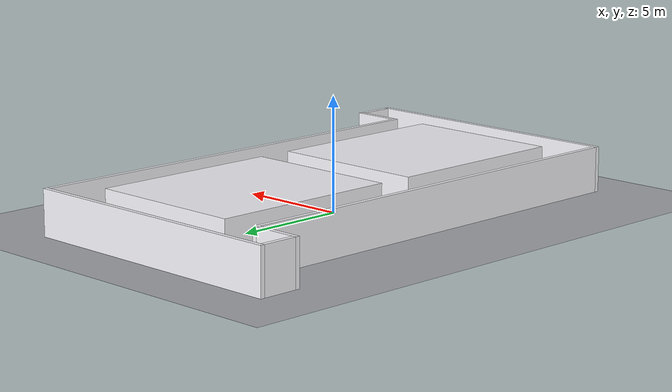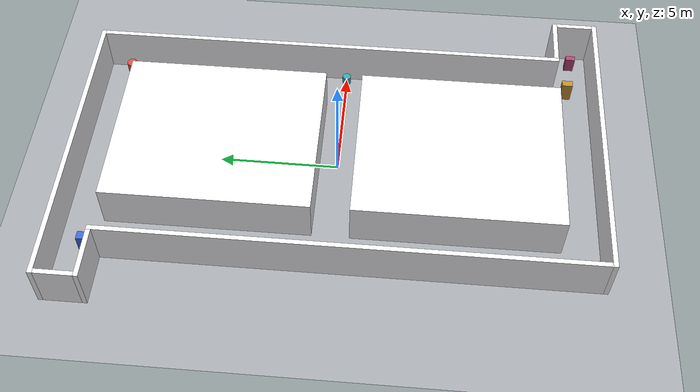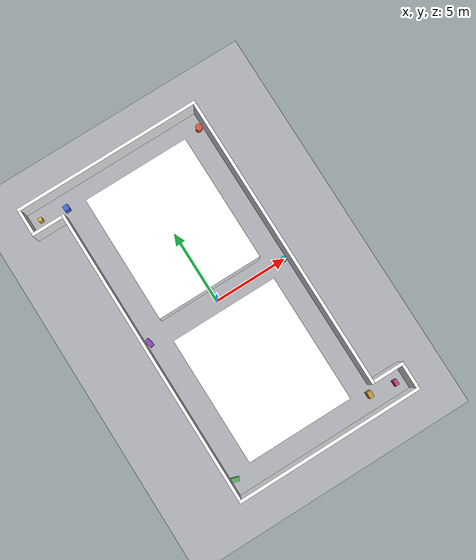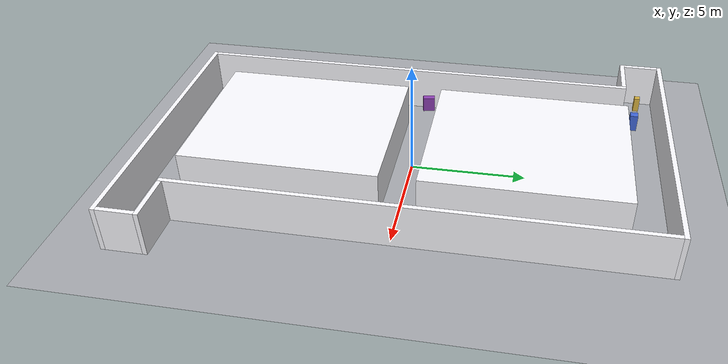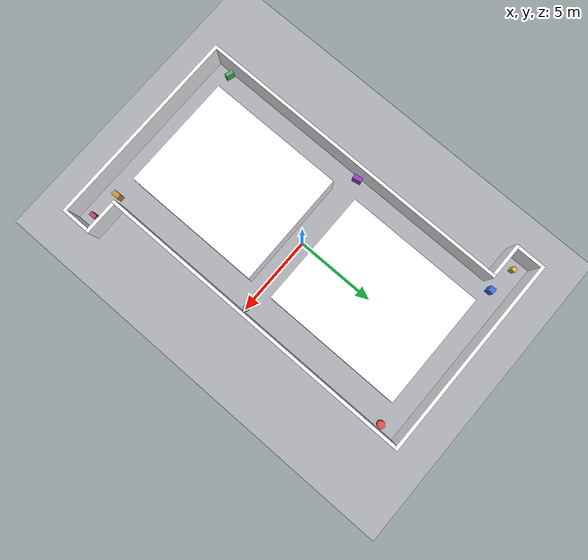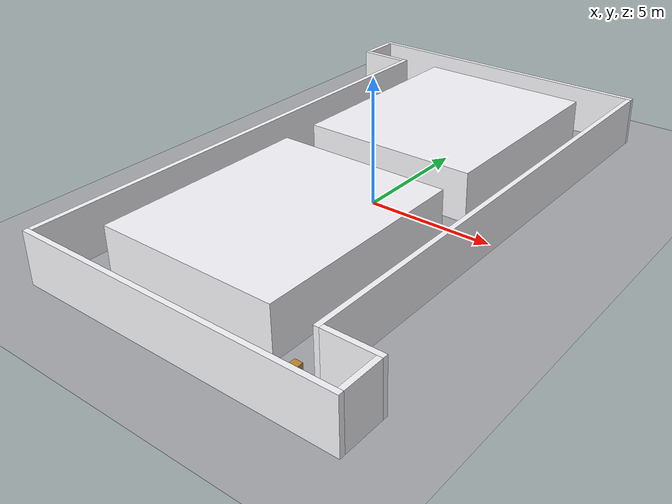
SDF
<?xml version="1.0" ?>
<sdf version="1.9">
  <world name="tc_lvl16">
    <physics name="1ms" type="ignored">
      <max_step_size>0.001</max_step_size>
      <real_time_factor>1.0</real_time_factor>
    </physics>

    <plugin filename="gz-sim-physics-system" name="gz::sim::systems::Physics"/>
    <plugin filename="gz-sim-user-commands-system" name="gz::sim::systems::UserCommands"/>
    <plugin filename="gz-sim-scene-broadcaster-system" name="gz::sim::systems::SceneBroadcaster"/>
    <plugin filename="gz-sim-sensors-system" name="gz::sim::systems::Sensors">
      <render_engine>ogre2</render_engine>
    </plugin>
    <plugin filename="gz-sim-imu-system" name="gz::sim::systems::Imu"/>

    <light type="directional" name="sun">
      <cast_shadows>true</cast_shadows>
      <pose>0 0 12 0 0 0</pose>
      <diffuse>0.95 0.95 0.92 1</diffuse>
      <specular>0.25 0.25 0.25 1</specular>
      <direction>-0.25 0.15 -0.95</direction>
    </light>
    <light type="directional" name="fill">
      <cast_shadows>false</cast_shadows>
      <pose>0 0 8 0 0 0</pose>
      <diffuse>0.35 0.35 0.4 1</diffuse>
      <specular>0.05 0.05 0.05 1</specular>
      <direction>0.4 -0.2 -0.7</direction>
    </light>

    <!-- Gray tiled floor (texture repeats; size covers building + margin) -->
    <model name="floor">
      <static>true</static>
      <pose>0 0 0 0 0 0</pose>
      <link name="link">
        <collision name="collision">
          <geometry>
            <plane>
              <normal>0 0 1</normal>
              <size>40 40</size>
            </plane>
          </geometry>
          <surface>
            <friction>
              <ode>
                <mu>100</mu>
                <mu2>80</mu2>
              </ode>
              <bullet>
                <friction>1.0</friction>
                <friction2>0.8</friction2>
                <rolling_friction>0.15</rolling_friction>
              </bullet>
            </friction>
          </surface>
        </collision>
        <visual name="visual">
          <geometry>
            <plane>
              <normal>0 0 1</normal>
              <size>40 40</size>
            </plane>
          </geometry>
          <material>
            <ambient>0.55 0.56 0.58 1</ambient>
            <diffuse>0.65 0.66 0.68 1</diffuse>
            <specular>0.08 0.08 0.08 1</specular>
            <pbr>
              <metal>
                <albedo_map>textures/floor_tile.png</albedo_map>
              </metal>
            </pbr>
          </material>
        </visual>
      </link>
    </model>

    <!-- Outer west wall: stops at north-aisle south edge so NW stub is open -->
    <model name="wall_outer_west">
      <static>true</static>
      <pose>-5.2167 -0.775 1.0 0 0 0</pose>
      <link name="link">
        <collision name="c"><geometry><box><size>0.20 20.17 2.0</size></box></geometry></collision>
        <visual name="v">
          <geometry><box><size>0.20 20.17 2.0</size></box></geometry>
          <material>
            <ambient>0.92 0.92 0.94 1</ambient>
            <diffuse>0.98 0.98 1.0 1</diffuse>
            <specular>0.15 0.15 0.15 1</specular>
          </material>
        </visual>
      </link>
    </model>

    <!-- Outer east wall: stops at south-aisle north edge so SE stub is open -->
    <model name="wall_outer_east">
      <static>true</static>
      <pose>5.2167 0.775 1.0 0 0 0</pose>
      <link name="link">
        <collision name="c"><geometry><box><size>0.20 20.17 2.0</size></box></geometry></collision>
        <visual name="v">
          <geometry><box><size>0.20 20.17 2.0</size></box></geometry>
          <material>
            <ambient>0.92 0.92 0.94 1</ambient>
            <diffuse>0.98 0.98 1.0 1</diffuse>
            <specular>0.15 0.15 0.15 1</specular>
          </material>
        </visual>
      </link>
    </model>

    <!-- Outer north wall (main + NW stub) -->
    <model name="wall_outer_north">
      <static>true</static>
      <pose>-1.0533 10.96 1.0 0 0 0</pose>
      <link name="link">
        <collision name="c"><geometry><box><size>12.74 0.20 2.0</size></box></geometry></collision>
        <visual name="v">
          <geometry><box><size>12.74 0.20 2.0</size></box></geometry>
          <material>
            <ambient>0.92 0.92 0.94 1</ambient>
            <diffuse>0.98 0.98 1.0 1</diffuse>
            <specular>0.15 0.15 0.15 1</specular>
          </material>
        </visual>
      </link>
    </model>

    <!-- Outer south wall (main + SE stub) -->
    <model name="wall_outer_south">
      <static>true</static>
      <pose>1.0533 -10.96 1.0 0 0 0</pose>
      <link name="link">
        <collision name="c"><geometry><box><size>12.74 0.20 2.0</size></box></geometry></collision>
        <visual name="v">
          <geometry><box><size>12.74 0.20 2.0</size></box></geometry>
          <material>
            <ambient>0.92 0.92 0.94 1</ambient>
            <diffuse>0.98 0.98 1.0 1</diffuse>
            <specular>0.15 0.15 0.15 1</specular>
          </material>
        </visual>
      </link>
    </model>

    <!-- NW stub alcove: south wall + west end cap (open to north aisle on the east) -->
    <model name="wall_stub_nw_south">
      <static>true</static>
      <pose>-6.37 9.21 1.0 0 0 0</pose>
      <link name="link">
        <collision name="c"><geometry><box><size>2.1066 0.20 2.0</size></box></geometry></collision>
        <visual name="v">
          <geometry><box><size>2.1066 0.20 2.0</size></box></geometry>
          <material>
            <ambient>0.92 0.92 0.94 1</ambient>
            <diffuse>0.98 0.98 1.0 1</diffuse>
          </material>
        </visual>
      </link>
    </model>
    <model name="wall_stub_nw_end">
      <static>true</static>
      <pose>-7.3233 10.085 1.0 0 0 0</pose>
      <link name="link">
        <collision name="c"><geometry><box><size>0.20 1.55 2.0</size></box></geometry></collision>
        <visual name="v">
          <geometry><box><size>0.20 1.55 2.0</size></box></geometry>
          <material>
            <ambient>0.92 0.92 0.94 1</ambient>
            <diffuse>0.98 0.98 1.0 1</diffuse>
          </material>
        </visual>
      </link>
    </model>

    <!-- SE stub alcove: north wall + east end cap (open to south aisle on the west) -->
    <model name="wall_stub_se_north">
      <static>true</static>
      <pose>6.37 -9.21 1.0 0 0 0</pose>
      <link name="link">
        <collision name="c"><geometry><box><size>2.1066 0.20 2.0</size></box></geometry></collision>
        <visual name="v">
          <geometry><box><size>2.1066 0.20 2.0</size></box></geometry>
          <material>
            <ambient>0.92 0.92 0.94 1</ambient>
            <diffuse>0.98 0.98 1.0 1</diffuse>
          </material>
        </visual>
      </link>
    </model>
    <model name="wall_stub_se_end">
      <static>true</static>
      <pose>7.3233 -10.085 1.0 0 0 0</pose>
      <link name="link">
        <collision name="c"><geometry><box><size>0.20 1.55 2.0</size></box></geometry></collision>
        <visual name="v">
          <geometry><box><size>0.20 1.55 2.0</size></box></geometry>
          <material>
            <ambient>0.92 0.92 0.94 1</ambient>
            <diffuse>0.98 0.98 1.0 1</diffuse>
          </material>
        </visual>
      </link>
    </model>

    <!-- Islands sized so N/E/S/W aisles and mid-waist are all C=1.55 m -->
    <model name="island_north">
      <static>true</static>
      <pose>0 5.0425 1.0 0 0 0</pose>
      <link name="link">
        <collision name="c"><geometry><box><size>7.1334 8.535 2.0</size></box></geometry></collision>
        <visual name="v">
          <geometry><box><size>7.1334 8.535 2.0</size></box></geometry>
          <material>
            <ambient>0.92 0.92 0.94 1</ambient>
            <diffuse>0.98 0.98 1.0 1</diffuse>
            <specular>0.15 0.15 0.15 1</specular>
          </material>
        </visual>
      </link>
    </model>

    <model name="island_south">
      <static>true</static>
      <pose>0 -5.0425 1.0 0 0 0</pose>
      <link name="link">
        <collision name="c"><geometry><box><size>7.1334 8.535 2.0</size></box></geometry></collision>
        <visual name="v">
          <geometry><box><size>7.1334 8.535 2.0</size></box></geometry>
          <material>
            <ambient>0.92 0.92 0.94 1</ambient>
            <diffuse>0.98 0.98 1.0 1</diffuse>
            <specular>0.15 0.15 0.15 1</specular>
          </material>
        </visual>
      </link>
    </model>

    <!-- Distinctive lidar landmarks (corridor is otherwise featureless → SLAM drift) -->
    <model name="landmark_nw">
      <static>true</static>
      <pose>-4.85 9.85 0.4 0 0 0</pose>
      <link name="link">
        <collision name="c"><geometry><box><size>0.35 0.35 0.8</size></box></geometry></collision>
        <visual name="v">
          <geometry><box><size>0.35 0.35 0.8</size></box></geometry>
          <material><ambient>0.2 0.35 0.7 1</ambient><diffuse>0.25 0.4 0.85 1</diffuse></material>
        </visual>
      </link>
    </model>
    <model name="landmark_ne">
      <static>true</static>
      <pose>4.85 9.85 0.25 0 0 0.4</pose>
      <link name="link">
        <collision name="c"><geometry><cylinder><radius>0.22</radius><length>0.5</length></cylinder></geometry></collision>
        <visual name="v">
          <geometry><cylinder><radius>0.22</radius><length>0.5</length></cylinder></geometry>
          <material><ambient>0.7 0.25 0.2 1</ambient><diffuse>0.85 0.3 0.25 1</diffuse></material>
        </visual>
      </link>
    </model>
    <model name="landmark_sw">
      <static>true</static>
      <pose>-4.85 -9.85 0.3 0 0 -0.3</pose>
      <link name="link">
        <collision name="c"><geometry><box><size>0.5 0.25 0.6</size></box></geometry></collision>
        <visual name="v">
          <geometry><box><size>0.5 0.25 0.6</size></box></geometry>
          <material><ambient>0.25 0.55 0.3 1</ambient><diffuse>0.3 0.65 0.35 1</diffuse></material>
        </visual>
      </link>
    </model>
    <model name="landmark_se">
      <static>true</static>
      <pose>4.85 -9.85 0.45 0 0 0</pose>
      <link name="link">
        <collision name="c"><geometry><box><size>0.3 0.45 0.9</size></box></geometry></collision>
        <visual name="v">
          <geometry><box><size>0.3 0.45 0.9</size></box></geometry>
          <material><ambient>0.6 0.45 0.15 1</ambient><diffuse>0.75 0.55 0.2 1</diffuse></material>
        </visual>
      </link>
    </model>
    <model name="landmark_waist_w">
      <static>true</static>
      <pose>-4.9 0.0 0.35 0 0 0.2</pose>
      <link name="link">
        <collision name="c"><geometry><box><size>0.28 0.55 0.7</size></box></geometry></collision>
        <visual name="v">
          <geometry><box><size>0.28 0.55 0.7</size></box></geometry>
          <material><ambient>0.45 0.2 0.55 1</ambient><diffuse>0.55 0.25 0.7 1</diffuse></material>
        </visual>
      </link>
    </model>
    <model name="landmark_waist_e">
      <static>true</static>
      <pose>4.9 0.0 0.2 0 0 0</pose>
      <link name="link">
        <collision name="c"><geometry><cylinder><radius>0.18</radius><length>0.4</length></cylinder></geometry></collision>
        <visual name="v">
          <geometry><cylinder><radius>0.18</radius><length>0.4</length></cylinder></geometry>
          <material><ambient>0.15 0.5 0.55 1</ambient><diffuse>0.2 0.65 0.7 1</diffuse></material>
        </visual>
      </link>
    </model>
    <model name="landmark_stub_nw">
      <static>true</static>
      <pose>-6.6 10.1 0.35 0 0 0</pose>
      <link name="link">
        <collision name="c"><geometry><box><size>0.25 0.25 0.7</size></box></geometry></collision>
        <visual name="v">
          <geometry><box><size>0.25 0.25 0.7</size></box></geometry>
          <material><ambient>0.7 0.55 0.2 1</ambient><diffuse>0.85 0.7 0.25 1</diffuse></material>
        </visual>
      </link>
    </model>
    <model name="landmark_stub_se">
      <static>true</static>
      <pose>6.6 -10.1 0.35 0 0 0</pose>
      <link name="link">
        <collision name="c"><geometry><box><size>0.25 0.4 0.7</size></box></geometry></collision>
        <visual name="v">
          <geometry><box><size>0.25 0.4 0.7</size></box></geometry>
          <material><ambient>0.55 0.2 0.35 1</ambient><diffuse>0.7 0.25 0.45 1</diffuse></material>
        </visual>
      </link>
    </model>

  </world>
</sdf>
